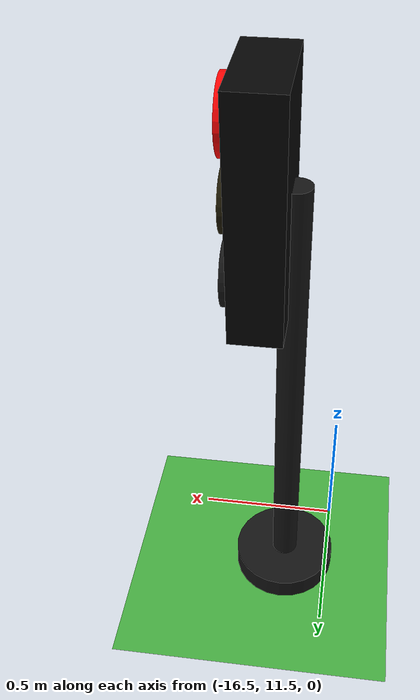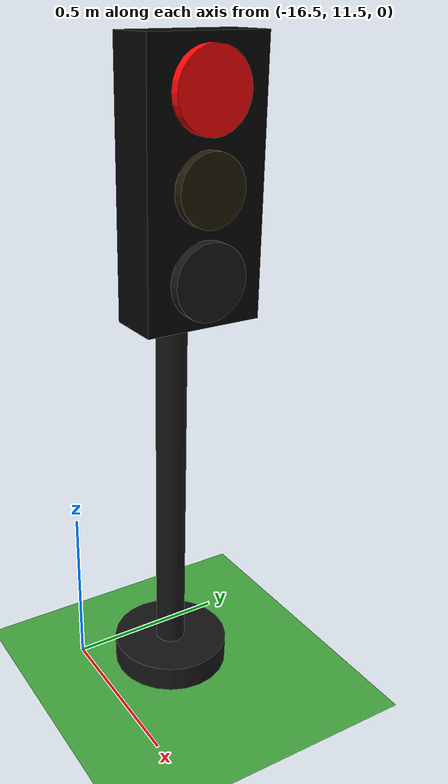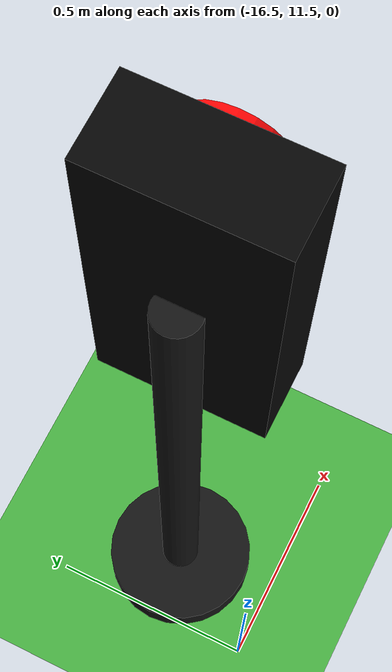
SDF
<sdf version="1.10">
 <world name="city_second">
  <model name="ground_plane">
   <static>true</static>
   <link name="link">
    <collision name="collision">
     <geometry><plane><normal>0 0 1</normal><size>300 300</size></plane></geometry>
    </collision>
    <visual name="visual">
     <geometry><plane><normal>0 0 1</normal><size>300 300</size></plane></geometry>
     <material>
      <ambient>0.280000001 0.689999998 0.25999999 1</ambient>
      <diffuse>0.280000001 0.689999998 0.25999999 1</diffuse>
      <specular>0.0299999993 0.0299999993 0.0299999993 1</specular>
     </material>
    </visual>
    <inertial>
     <mass>1</mass>
     <inertia><ixx>1</ixx><ixy>0</ixy><ixz>0</ixz><iyy>1</iyy><iyz>0</iyz><izz>1</izz></inertia>
    </inertial>
   </link>
  </model>
  <model name="simple_traffic_light_red_east_5">
   <static>true</static>
   <pose>-16.341755595436247 11.74528513419834 -6.9388939039072284e-18 0 0 -1.5707999672671704</pose>
   <link name="base">
    <pose>0 0 0.040000000000000001 0 0 0</pose>
    <collision name="collision">
     <geometry>
      <cylinder><radius>0.17999999999999999</radius><length>0.080000000000000002</length></cylinder>
     </geometry>
    </collision>
    <visual name="visual">
     <geometry>
      <cylinder><radius>0.17999999999999999</radius><length>0.080000000000000002</length></cylinder>
     </geometry>
     <material>
      <ambient>0.0799999982 0.0799999982 0.0799999982 1</ambient>
      <diffuse>0.0799999982 0.0799999982 0.0799999982 1</diffuse>
      <specular>0.150000006 0.150000006 0.150000006 1</specular>
      <emissive>0 0 0 1</emissive>
     </material>
    </visual>
    <inertial>
     <mass>1</mass>
     <inertia><ixx>1</ixx><ixy>0</ixy><ixz>0</ixz><iyy>1</iyy><iyz>0</iyz><izz>1</izz></inertia>
    </inertial>
   </link>
   <link name="pole">
    <pose>-7.1054273576010019e-15 7.1054273576010019e-15 0.80000000000000004 0 0 0</pose>
    <collision name="collision">
     <geometry>
      <cylinder><radius>0.044999999999999998</radius><length>1.6000000000000001</length></cylinder>
     </geometry>
    </collision>
    <visual name="visual">
     <geometry>
      <cylinder><radius>0.044999999999999998</radius><length>1.6000000000000001</length></cylinder>
     </geometry>
     <material>
      <ambient>0.0799999982 0.0799999982 0.0799999982 1</ambient>
      <diffuse>0.0799999982 0.0799999982 0.0799999982 1</diffuse>
      <specular>0.150000006 0.150000006 0.150000006 1</specular>
      <emissive>0 0 0 1</emissive>
     </material>
    </visual>
    <inertial>
     <mass>1</mass>
     <inertia><ixx>1</ixx><ixy>0</ixy><ixz>0</ixz><iyy>1</iyy><iyz>0</iyz><izz>1</izz></inertia>
    </inertial>
   </link>
   <link name="signal_box">
    <pose>7.1054273576010019e-15 0.090000000000003411 1.5500000000000003 0 0 0</pose>
    <collision name="collision">
     <geometry><box><size>0.34000000000000002 0.16 0.71999999999999997</size></box></geometry>
    </collision>
    <visual name="visual">
     <geometry><box><size>0.34000000000000002 0.16 0.71999999999999997</size></box></geometry>
     <material>
      <ambient>0.0199999996 0.0199999996 0.0199999996 1</ambient>
      <diffuse>0.0199999996 0.0199999996 0.0199999996 1</diffuse>
      <specular>0.150000006 0.150000006 0.150000006 1</specular>
      <emissive>0 0 0 1</emissive>
     </material>
    </visual>
    <inertial>
     <mass>1</mass>
     <inertia><ixx>1</ixx><ixy>0</ixy><ixz>0</ixz><iyy>1</iyy><iyz>0</iyz><izz>1</izz></inertia>
    </inertial>
   </link>
   <link name="red_lens">
    <pose>-7.1054273576010019e-15 0.18100000000000449 1.78 1.5707963267999998 -8.0126081257495458e-28 3.1401849173675498e-16</pose>
    <collision name="collision">
     <geometry><cylinder><radius>0.105</radius><length>0.035000000000000003</length></cylinder></geometry>
    </collision>
    <visual name="visual">
     <geometry><cylinder><radius>0.105</radius><length>0.035000000000000003</length></cylinder></geometry>
     <material>
      <ambient>1 0.0199999996 0.0199999996 1</ambient>
      <diffuse>1 0.0199999996 0.0199999996 1</diffuse>
      <specular>0.150000006 0.150000006 0.150000006 1</specular>
      <emissive>1 0.0199999996 0.0199999996 1</emissive>
     </material>
    </visual>
    <inertial>
     <mass>1</mass>
     <inertia><ixx>1</ixx><ixy>0</ixy><ixz>0</ixz><iyy>1</iyy><iyz>0</iyz><izz>1</izz></inertia>
    </inertial>
   </link>
   <link name="yellow_lens">
    <pose>-7.1054273576010019e-15 0.18200000000000216 1.5500000000000003 1.5707963267999998 -8.0126081257495458e-28 3.1401849173675498e-16</pose>
    <collision name="collision">
     <geometry>
      <cylinder><radius>0.095000000000000001</radius><length>0.035000000000000003</length></cylinder>
     </geometry>
    </collision>
    <visual name="visual">
     <geometry>
      <cylinder><radius>0.095000000000000001</radius><length>0.035000000000000003</length></cylinder>
     </geometry>
     <material>
      <ambient>0.119999997 0.100000001 0.0199999996 1</ambient>
      <diffuse>0.119999997 0.100000001 0.0199999996 1</diffuse>
      <specular>0.150000006 0.150000006 0.150000006 1</specular>
      <emissive>0 0 0 1</emissive>
     </material>
    </visual>
    <inertial>
     <mass>1</mass>
     <inertia><ixx>1</ixx><ixy>0</ixy><ixz>0</ixz><iyy>1</iyy><iyz>0</iyz><izz>1</izz></inertia>
    </inertial>
   </link>
   <link name="green_lens">
    <pose>0 0.18300000000000693 1.3199999999999998 1.5707963267999998 -8.0126081257495458e-28 3.1401849173675498e-16</pose>
    <collision name="collision">
     <geometry><cylinder><radius>0.105</radius><length>0.035000000000000003</length></cylinder></geometry>
    </collision>
    <visual name="visual">
     <geometry><cylinder><radius>0.105</radius><length>0.035000000000000003</length></cylinder></geometry>
     <material>
      <ambient>0.0799999982 0.0799999982 0.0799999982 1</ambient>
      <diffuse>0.0799999982 0.0799999982 0.0799999982 1</diffuse>
      <specular>0.150000006 0.150000006 0.150000006 1</specular>
      <emissive>0 0 0 1</emissive>
     </material>
    </visual>
    <inertial>
     <mass>1</mass>
     <inertia><ixx>1</ixx><ixy>0</ixy><ixz>0</ixz><iyy>1</iyy><iyz>0</iyz><izz>1</izz></inertia>
    </inertial>
   </link>
   <light name="red_glow" type="point">
    <pose>0 0.28 1.78 0 0 0</pose>
    <diffuse>1 0.02 0.02 1</diffuse>
    <specular>1 0.02 0.02 1</specular>
    <attenuation>
     <range>3.0</range>
     <constant>0.8</constant>
     <linear>0.15</linear>
     <quadratic>0.02</quadratic>
    </attenuation>
    <cast_shadows>false</cast_shadows>
   </light>
  </model>
 </world>
</sdf>
